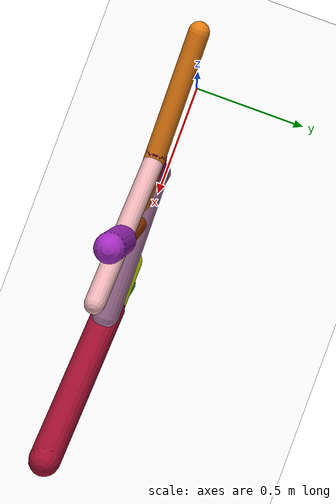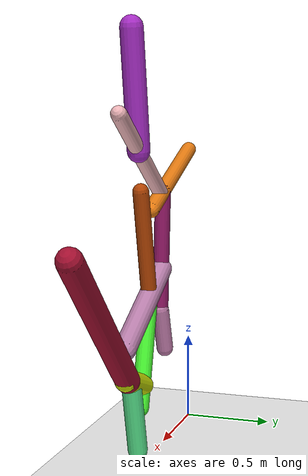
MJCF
<mujoco model="morphology">
  <option timestep="0.01"/>
  <default>
    <default class="/"/>
    <default class="0/"/>
    <default class="0/1/"/>
    <default class="0/1/2/"/>
    <default class="0/1/2/3/"/>
    <default class="0/1/2/3/4/"/>
    <default class="0/1/2/3/4/5/"/>
    <default class="0/1/2/3/4/6/"/>
    <default class="0/1/2/7/"/>
    <default class="0/1/8/"/>
    <default class="0/9/"/>
    <default class="0/9/10/"/>
  </default>
  <asset>
    <texture name="texplane" type="2d" builtin="checker" rgb1="0.10000000000000001 0.20000000000000001 0.29999999999999999" rgb2="0.20000000000000001 0.29999999999999999 0.40000000000000002" width="300" height="300"/>
    <material name="MatPlane" class="/" texture="texplane" texrepeat="20 20" specular="1" shininess="1" reflectance="0.5"/>
  </asset>
  <worldbody>
    <light name="//unnamed_light_0" class="/" directional="true" pos="0 0 1.5" dir="0 0 -1.3" cutoff="100" exponent="1" diffuse="1 1 1" specular="0.10000000000000001 0.10000000000000001 0.10000000000000001"/>
    <geom name="ground" class="/" type="plane" size="15 15 0.5" material="MatPlane" rgba="1 1 1 1"/>
    <site name="body" class="/" size="9.9999999999999995e-07 9.9999999999999995e-07 9.9999999999999995e-07" pos="0 0 1.6439519882202149"/>
    <body pos="0 0 1.6439519882202149" name="0/">
      <joint name="0/rootx/" class="/" type="slide" axis="1 0 0" limited="false" stiffness="0" armature="0" damping="0"/>
      <joint name="0/rootz/" class="/" type="slide" axis="0 0 1" limited="false" stiffness="0" armature="0" damping="0"/>
      <joint name="0/rooty/" class="/" type="hinge" axis="0 1 0" limited="false" stiffness="0" armature="0" damping="0"/>
      <geom name="0/geom" class="0/" type="capsule" contype="1" conaffinity="1" condim="3" size="0.043188137605141293" rgba="0.90595853626678691 0.48673176647507999 0.06932582093093842 1" friction="0.59999999999999998 0.10000000000000001 0.10000000000000001" fromto="0 0 0 0.69008256623783915 0 -0.28029117150910943"/>
      <site name="0/end0" class="0/" size="0.0050000000000000001" pos="0.69008256623783915 0 -0.28029117150910943"/>
      <site name="0/attach1" class="0/" size="9.9999999999999995e-07 9.9999999999999995e-07 9.9999999999999995e-07" pos="0.49094240758485092 0 -0.1994063164291473"/>
      <body pos="0.49094240758485092 0 -0.1994063164291473" name="0/1/">
        <joint name="0/1/joint/" class="0/" type="hinge" axis="0 1 0" limited="true" range="-42.896304310018962 42.896304310018962"/>
        <geom name="0/1/geom" class="0/1/" type="capsule" contype="1" conaffinity="1" condim="3" size="0.043628318767258381" rgba="0.53185231401723165 0.080945744270088604 0.36773856355322077 1" friction="0.59999999999999998 0.10000000000000001 0.10000000000000001" fromto="0 0 0 0.051958314666894934 0 -0.66115200699994081"/>
        <site name="0/1/end1" class="0/1/" size="0.0050000000000000001" pos="0.051958314666894934 0 -0.66115200699994081"/>
        <site name="0/1/attach2" class="0/1/" size="9.9999999999999995e-07 9.9999999999999995e-07 9.9999999999999995e-07" pos="0.033926254495886668 0 -0.43170013103288163"/>
        <body pos="0.033926254495886668 0 -0.43170013103288163" name="0/1/2/">
          <geom name="0/1/2/geom" class="0/1/2/" type="capsule" contype="1" conaffinity="1" condim="3" size="0.059331169528611609" rgba="0.73191346708513683 0.50154488066244507 0.67720865995128554 1" friction="0.59999999999999998 0.10000000000000001 0.10000000000000001" fromto="0 0 0 0.59516318448873884 0 -0.31517122853754376"/>
          <site name="0/1/2/end2" class="0/1/2/" size="0.0050000000000000001" pos="0.59516318448873884 0 -0.31517122853754376"/>
          <site name="0/1/2/attach3" class="0/1/2/" size="9.9999999999999995e-07 9.9999999999999995e-07 9.9999999999999995e-07" pos="0.20367088655748744 0 -0.10785479546890318"/>
          <body pos="0.20367088655748744 0 -0.10785479546890318" name="0/1/2/3/">
            <joint name="0/1/2/3/joint/" class="0/1/2/" type="hinge" axis="0 1 0" limited="true" range="-39.128815982972412 39.128815982972412"/>
            <geom name="0/1/2/3/geom" class="0/1/2/3/" type="capsule" contype="1" conaffinity="1" condim="3" size="0.046129416898804634" rgba="0.27745261447808978 0.96138283713786843 0.18630904945627991 1" friction="0.59999999999999998 0.10000000000000001 0.10000000000000001" fromto="0 0 0 0.16112252863272825 0 -0.5851659693196235"/>
            <site name="0/1/2/3/end3" class="0/1/2/3/" size="0.0050000000000000001" pos="0.16112252863272825 0 -0.5851659693196235"/>
            <site name="0/1/2/3/attach4" class="0/1/2/3/" size="9.9999999999999995e-07 9.9999999999999995e-07 9.9999999999999995e-07" pos="0.128402115506903 0 -0.46633173536245592"/>
            <body pos="0.128402115506903 0 -0.46633173536245592" name="0/1/2/3/4/">
              <geom name="0/1/2/3/4/geom" class="0/1/2/3/4/" type="capsule" contype="1" conaffinity="1" condim="3" size="0.059748030842445336" rgba="0.81393146808371786 0.91008412699841279 0.013508849665078371 1" friction="0.59999999999999998 0.10000000000000001 0.10000000000000001" fromto="0 0 0 0.24968051079546205 0 0.095630575358842007"/>
              <site name="0/1/2/3/4/end4" class="0/1/2/3/4/" size="0.0050000000000000001" pos="0.24968051079546205 0 0.095630575358842007"/>
              <site name="0/1/2/3/4/attach5" class="0/1/2/3/4/" size="9.9999999999999995e-07 9.9999999999999995e-07 9.9999999999999995e-07" pos="0.22233284309254009 0 0.085156096638733664"/>
              <body pos="0.22233284309254009 0 0.085156096638733664" name="0/1/2/3/4/5/">
                <joint name="0/1/2/3/4/5/joint/" class="0/1/2/3/4/" type="hinge" axis="0 1 0" limited="true" range="-34.257162756229739 34.257162756229739"/>
                <geom name="0/1/2/3/4/5/geom" class="0/1/2/3/4/5/" type="capsule" contype="1" conaffinity="1" condim="3" size="0.065276051071268604" rgba="0.6391046593333779 0.057814559837099821 0.18811636684887634 1" friction="0.59999999999999998 0.10000000000000001 0.10000000000000001" fromto="0 0 0 0.7151206939231165 0 0.74663689614552919"/>
                <site name="0/1/2/3/4/5/end5" class="0/1/2/3/4/5/" size="0.0050000000000000001" pos="0.7151206939231165 0 0.74663689614552919"/>
              </body>
              <site name="0/1/2/3/4/attach6" class="0/1/2/3/4/" size="9.9999999999999995e-07 9.9999999999999995e-07 9.9999999999999995e-07" pos="0.17023072716796295 0 0.065200372792261332"/>
              <body pos="0.17023072716796295 0 0.065200372792261332" name="0/1/2/3/4/6/">
                <joint name="0/1/2/3/4/6/joint/" class="0/1/2/3/4/" type="hinge" axis="0 1 0" limited="true" range="-30.745562182502596 30.745562182502596"/>
                <geom name="0/1/2/3/4/6/geom" class="0/1/2/3/4/6/" type="capsule" contype="1" conaffinity="1" condim="3" size="0.052751019283579559" rgba="0.33011970677340796 0.86996711066051324 0.5340067082042862 1" friction="0.59999999999999998 0.10000000000000001 0.10000000000000001" fromto="0 0 0 -0.093051909809100497 0 -0.40385935197253703"/>
                <site name="0/1/2/3/4/6/end6" class="0/1/2/3/4/6/" size="0.0050000000000000001" pos="-0.093051909809100497 0 -0.40385935197253703"/>
              </body>
            </body>
          </body>
          <site name="0/1/2/attach7" class="0/1/2/" size="9.9999999999999995e-07 9.9999999999999995e-07 9.9999999999999995e-07" pos="0.20789247640195102 0 -0.11009035655926895"/>
          <body pos="0.20789247640195102 0 -0.11009035655926895" name="0/1/2/7/">
            <joint name="0/1/2/7/joint/" class="0/1/2/" type="hinge" axis="0 1 0" limited="true" range="-33.194863596886478 33.194863596886478"/>
            <geom name="0/1/2/7/geom" class="0/1/2/7/" type="capsule" contype="1" conaffinity="1" condim="3" size="0.043127180993652391" rgba="0.69607554819500239 0.26569496548413563 0.014900008013579935 1" friction="0.59999999999999998 0.10000000000000001 0.10000000000000001" fromto="0 0 0 0.12422768510250415 0 0.57681061851489512"/>
            <site name="0/1/2/7/end7" class="0/1/2/7/" size="0.0050000000000000001" pos="0.12422768510250415 0 0.57681061851489512"/>
          </body>
        </body>
        <site name="0/1/attach8" class="0/1/" size="9.9999999999999995e-07 9.9999999999999995e-07 9.9999999999999995e-07" pos="0.05158818626337866 0 -0.65644224806335261"/>
        <body pos="0.05158818626337866 0 -0.65644224806335261" name="0/1/8/">
          <joint name="0/1/8/joint/" class="0/1/" type="hinge" axis="0 1 0" limited="true" range="-43.770931373302588 43.770931373302588"/>
          <geom name="0/1/8/geom" class="0/1/8/" type="capsule" contype="1" conaffinity="1" condim="3" size="0.046531010306739284" rgba="0.76945835816148023 0.49790828582938651 0.68259380188323193 1" friction="0.59999999999999998 0.10000000000000001 0.10000000000000001" fromto="0 0 0 -0.077540427141172374 0 -0.24396692272945475"/>
          <site name="0/1/8/end8" class="0/1/8/" size="0.0050000000000000001" pos="-0.077540427141172374 0 -0.24396692272945475"/>
        </body>
      </body>
      <site name="0/attach9" class="0/" size="9.9999999999999995e-07 9.9999999999999995e-07 9.9999999999999995e-07" pos="0.52079736403406651 0 -0.2115325186082935"/>
      <body pos="0.52079736403406651 0 -0.2115325186082935" name="0/9/">
        <joint name="0/9/joint/" class="0/" type="hinge" axis="0 1 0" limited="true" range="-69.118813670353404 69.118813670353404"/>
        <geom name="0/9/geom" class="0/9/" type="capsule" contype="1" conaffinity="1" condim="3" size="0.041647802123146178" rgba="0.92127208735082378 0.70044061255259515 0.71500164242988706 1" friction="0.59999999999999998 0.10000000000000001 0.10000000000000001" fromto="0 0 0 0.64705924149608318 0 0.4577394510838424"/>
        <site name="0/9/end9" class="0/9/" size="0.0050000000000000001" pos="0.64705924149608318 0 0.4577394510838424"/>
        <site name="0/9/attach10" class="0/9/" size="9.9999999999999995e-07 9.9999999999999995e-07 9.9999999999999995e-07" pos="0.36528100961009119 0 0.25840528673028312"/>
        <body pos="0.36528100961009119 0 0.25840528673028312" name="0/9/10/">
          <geom name="0/9/10/geom" class="0/9/10/" type="capsule" contype="1" conaffinity="1" condim="3" size="0.060308125318269998" rgba="0.6485107245775974 0.17518452569114729 0.76419528571470619 1" friction="0.59999999999999998 0.10000000000000001 0.10000000000000001" fromto="0 0 0 0.092261570012051486 0 0.62227516062537647"/>
          <site name="0/9/10/end10" class="0/9/10/" size="0.0050000000000000001" pos="0.092261570012051486 0 0.62227516062537647"/>
        </body>
      </body>
      <camera name="0/side" class="0/" mode="trackcom" pos="0.40000000000000002 -4 0.20000000000000001" quat="0.70699999999999996 0.70699999999999996 0 0"/>
    </body>
  </worldbody>
  <actuator>
    <motor name="0/1/motor" class="0/1/" ctrllimited="true" ctrlrange="-1 1" gear="78" joint="0/1/joint/"/>
    <motor name="0/1/2/3/motor" class="0/1/2/3/" ctrllimited="true" ctrlrange="-1 1" gear="68" joint="0/1/2/3/joint/"/>
    <motor name="0/1/2/3/4/5/motor" class="0/1/2/3/4/5/" ctrllimited="true" ctrlrange="-1 1" gear="54" joint="0/1/2/3/4/5/joint/"/>
    <motor name="0/1/2/3/4/6/motor" class="0/1/2/3/4/6/" ctrllimited="true" ctrlrange="-1 1" gear="61" joint="0/1/2/3/4/6/joint/"/>
    <motor name="0/1/2/7/motor" class="0/1/2/7/" ctrllimited="true" ctrlrange="-1 1" gear="56" joint="0/1/2/7/joint/"/>
    <motor name="0/1/8/motor" class="0/1/8/" ctrllimited="true" ctrlrange="-1 1" gear="52" joint="0/1/8/joint/"/>
    <motor name="0/9/motor" class="0/9/" ctrllimited="true" ctrlrange="-1 1" gear="87" joint="0/9/joint/"/>
  </actuator>
  <sensor>
    <subtreelinvel name="velocity" body="0/"/>
  </sensor>
</mujoco>
